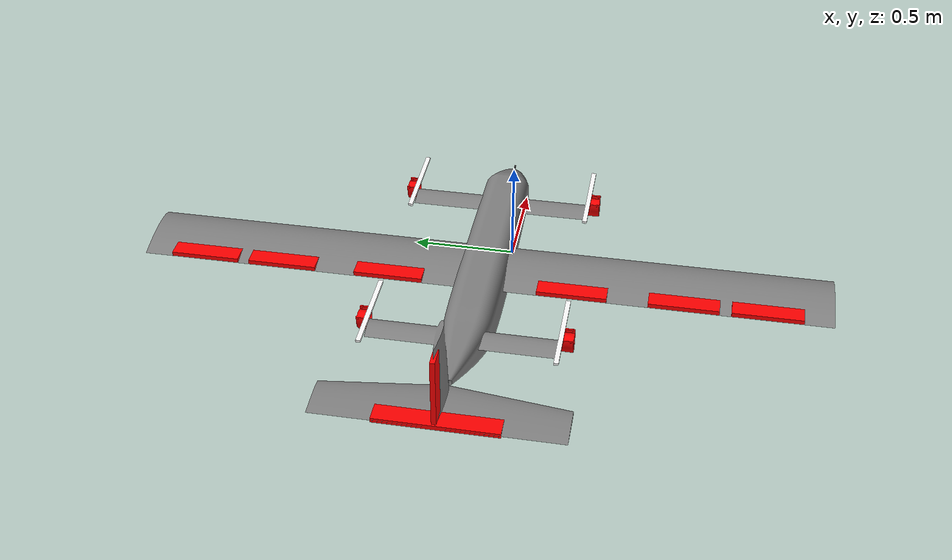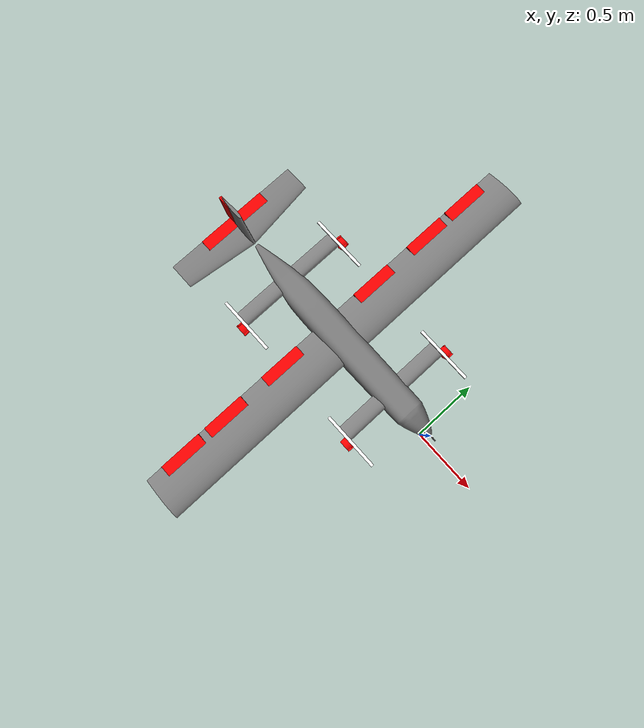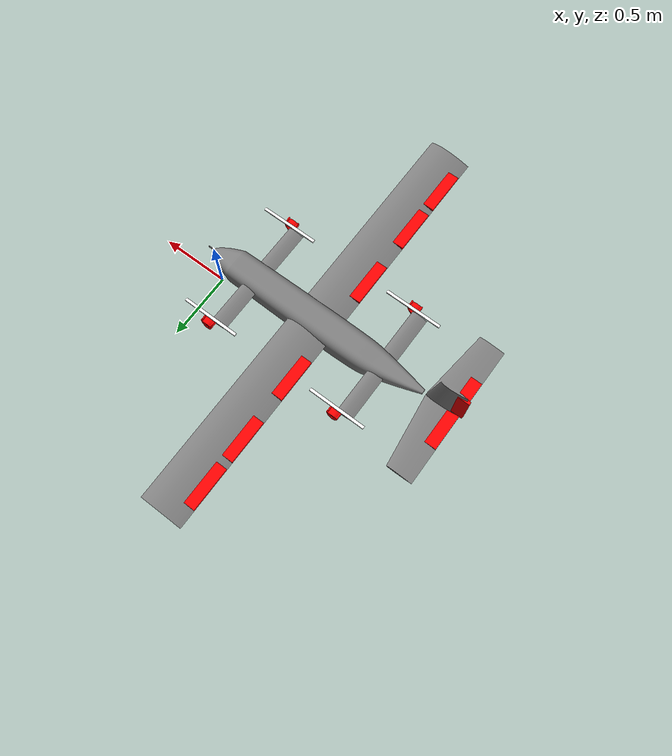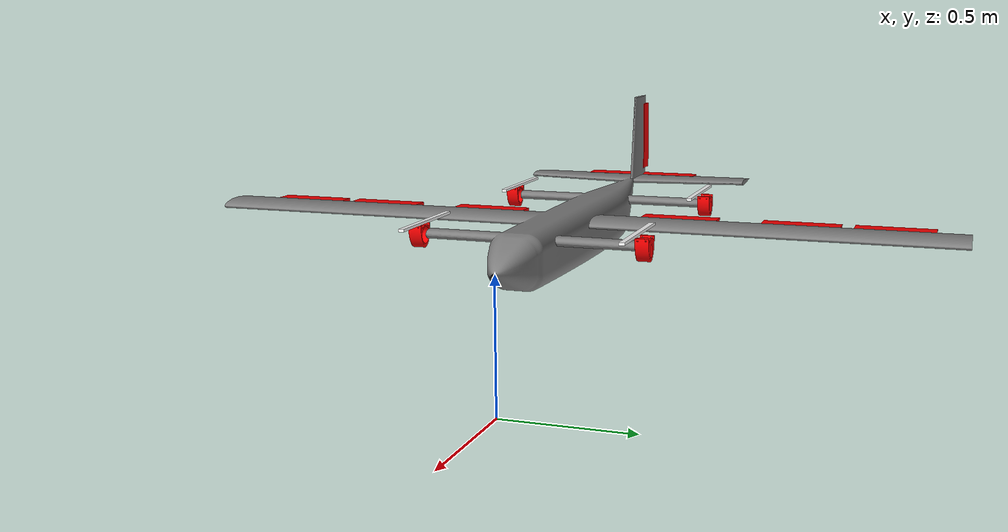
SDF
<?xml version='1.0' encoding='utf-8'?>
<sdf version="1.9">
  <model name="maal_tiltrotor">
    <pose>0 0 0.5 0 0 0</pose><link name="base_link">
      <pose>0 0 0 0 0 0</pose>
      <inertial>
        <pose>-0.711142 0.007716 0.189592 0 0 0</pose>
        <mass>11.177</mass>
        <inertia>
          <ixx>2.501116</ixx>
          <ixy>0.192588</ixy>
          <ixz>-0.028598</ixz>
          <iyy>4.319399</iyy>
          <iyz>-0.002085</iyz>
          <izz>1.94082</izz>
        </inertia>
      </inertial>
      <visual name="base_link_visual">
        <pose>0 0 0 0 0 3.14159265</pose>
        <geometry>
          <mesh><scale>0.001 0.001 0.001</scale><uri>model://maal_tiltrotor/meshes/fix_body.stl</uri></mesh></geometry>
        <material>
          <ambient>0.5 0.5 0.5 1</ambient>
          <diffuse>0.5 0.5 0.5 1</diffuse>
        </material>
      </visual>
      <collision name="base_link_collision">
        <pose>-0.711142 0.007716 0.089592 0 0 0</pose>
        <geometry>
          <box>
            <size>2.0 0.5 0.3</size>
          </box>
        </geometry>
      </collision>
    <sensor name="imu_sensor" type="imu">
        <pose>-0.711142 0.007716 0.189592 0 0 0</pose>
        <always_on>1</always_on>
        <update_rate>250</update_rate>
        <imu>
          <angular_velocity>
            <x>
              <noise type="gaussian">
                <mean>0</mean>
                <stddev>0.0003394</stddev>
                <dynamic_bias_stddev>3.8785e-05</dynamic_bias_stddev>
                <dynamic_bias_correlation_time>1000</dynamic_bias_correlation_time>
              </noise>
            </x>
            <y>
              <noise type="gaussian">
                <mean>0</mean>
                <stddev>0.0003394</stddev>
                <dynamic_bias_stddev>3.8785e-05</dynamic_bias_stddev>
                <dynamic_bias_correlation_time>1000</dynamic_bias_correlation_time>
              </noise>
            </y>
            <z>
              <noise type="gaussian">
                <mean>0</mean>
                <stddev>0.0003394</stddev>
                <dynamic_bias_stddev>3.8785e-05</dynamic_bias_stddev>
                <dynamic_bias_correlation_time>1000</dynamic_bias_correlation_time>
              </noise>
            </z>
          </angular_velocity>
          <linear_acceleration>
            <x>
              <noise type="gaussian">
                <mean>0</mean>
                <stddev>0.004</stddev>
                <dynamic_bias_stddev>0.006</dynamic_bias_stddev>
                <dynamic_bias_correlation_time>300</dynamic_bias_correlation_time>
              </noise>
            </x>
            <y>
              <noise type="gaussian">
                <mean>0</mean>
                <stddev>0.004</stddev>
                <dynamic_bias_stddev>0.006</dynamic_bias_stddev>
                <dynamic_bias_correlation_time>300</dynamic_bias_correlation_time>
              </noise>
            </y>
            <z>
              <noise type="gaussian">
                <mean>0</mean>
                <stddev>0.004</stddev>
                <dynamic_bias_stddev>0.006</dynamic_bias_stddev>
                <dynamic_bias_correlation_time>300</dynamic_bias_correlation_time>
              </noise>
            </z>
          </linear_acceleration>
        </imu>
      </sensor>
      <sensor name="air_pressure_sensor" type="air_pressure">
        <pose>-0.711142 0.007716 0.189592 0 0 0</pose>
        <always_on>1</always_on>
        <update_rate>50</update_rate>
        <air_pressure>
          <pressure>
            <noise type="gaussian">
              <mean>0</mean>
              <stddev>0.01</stddev>
            </noise>
          </pressure>
        </air_pressure>
      </sensor>
      <sensor name="magnetometer_sensor" type="magnetometer">
        <pose>-0.711142 0.007716 0.189592 0 0 0</pose>
        <always_on>1</always_on>
        <update_rate>100</update_rate>
        <magnetometer>
          <x>
            <noise type="gaussian">
              <stddev>0.0001</stddev>
            </noise>
          </x>
          <y>
            <noise type="gaussian">
              <stddev>0.0001</stddev>
            </noise>
          </y>
          <z>
            <noise type="gaussian">
              <stddev>0.0001</stddev>
            </noise>
          </z>
        </magnetometer>
      </sensor>
      <sensor name="navsat_sensor" type="navsat">
        <pose>-0.711142 0.007716 0.189592 0 0 0</pose>
        <always_on>1</always_on>
        <update_rate>30</update_rate>
      </sensor>
    </link>
    <link name="tilt_front_right">
      <pose>-0.325 -0.4 0.053 0 0 0</pose>
      <inertial>
        <mass>0.01</mass>
        <inertia>
          <ixx>0.0001</ixx>
          <ixy>0</ixy>
          <ixz>0</ixz>
          <iyy>0.0001</iyy>
          <iyz>0</iyz>
          <izz>0.0001</izz>
        </inertia>
      </inertial>
      <visual name="tilt_front_right_visual">
        <pose>0 0 0 0 0 3.14159265</pose><geometry>
          <mesh><scale>0.001 0.001 0.001</scale><uri>model://maal_tiltrotor/meshes/tilter.stl</uri></mesh></geometry>
        <material>
          <ambient>1 0 0 1</ambient>
        </material>
      </visual>
    </link>
    <joint name="tilt_front_right_joint" type="revolute">
      <parent>base_link</parent>
      <child>tilt_front_right</child>
      <pose>0 0 0 0 0 0</pose>
      <axis>
        <xyz>0 1.0 0</xyz>
        <limit>
          <lower>-0.2</lower>
          <upper>1.7</upper>
        </limit>
        <dynamics>
          <damping>0.01</damping>
          <friction>0.01</friction>
        </dynamics>
      </axis>
    </joint>
    <link name="tilt_front_left">
      <pose>-0.325 0.4 0.053 0 0 0</pose>
      <inertial>
        <mass>0.01</mass>
        <inertia>
          <ixx>0.0001</ixx>
          <ixy>0</ixy>
          <ixz>0</ixz>
          <iyy>0.0001</iyy>
          <iyz>0</iyz>
          <izz>0.0001</izz>
        </inertia>
      </inertial>
      <visual name="tilt_front_left_visual">
        <pose>0 0 0 0 0 3.14159265</pose><geometry>
          <mesh><scale>0.001 -0.001 0.001</scale><uri>model://maal_tiltrotor/meshes/tilter.stl</uri></mesh></geometry>
        <material>
          <ambient>1 0 0 1</ambient>
        </material>
      </visual>
    </link>
    <joint name="tilt_front_left_joint" type="revolute">
      <parent>base_link</parent>
      <child>tilt_front_left</child>
      <pose>0 0 0 0 0 0</pose>
      <axis>
        <xyz>0 1.0 0</xyz>
        <limit>
          <lower>-0.2</lower>
          <upper>1.7</upper>
        </limit>
        <dynamics>
          <damping>0.01</damping>
          <friction>0.01</friction>
        </dynamics>
      </axis>
    </joint>
    <link name="tilt_rear_right">
      <pose>-1.305 -0.4 0.053 0 0 0</pose>
      <inertial>
        <mass>0.01</mass>
        <inertia>
          <ixx>0.0001</ixx>
          <ixy>0</ixy>
          <ixz>0</ixz>
          <iyy>0.0001</iyy>
          <iyz>0</iyz>
          <izz>0.0001</izz>
        </inertia>
      </inertial>
      <visual name="tilt_rear_right_visual">
        <pose>0 0 0 0 0 3.14159265</pose><geometry>
          <mesh><scale>0.001 0.001 0.001</scale><uri>model://maal_tiltrotor/meshes/tilter.stl</uri></mesh></geometry>
        <material>
          <ambient>1 0 0 1</ambient>
        </material>
      </visual>
    </link>
    <joint name="tilt_rear_right_joint" type="revolute">
      <parent>base_link</parent>
      <child>tilt_rear_right</child>
      <pose>0 0 0 0 0 0</pose>
      <axis>
        <xyz>0 1.0 0</xyz>
        <limit>
          <lower>-0.2</lower>
          <upper>1.7</upper>
        </limit>
        <dynamics>
          <damping>0.01</damping>
          <friction>0.01</friction>
        </dynamics>
      </axis>
    </joint>
    <link name="tilt_rear_left">
      <pose>-1.305 0.4 0.053 0 0 0</pose>
      <inertial>
        <mass>0.01</mass>
        <inertia>
          <ixx>0.0001</ixx>
          <ixy>0</ixy>
          <ixz>0</ixz>
          <iyy>0.0001</iyy>
          <iyz>0</iyz>
          <izz>0.0001</izz>
        </inertia>
      </inertial>
      <visual name="tilt_rear_left_visual">
        <pose>0 0 0 0 0 3.14159265</pose><geometry>
          <mesh><scale>0.001 -0.001 0.001</scale><uri>model://maal_tiltrotor/meshes/tilter.stl</uri></mesh></geometry>
        <material>
          <ambient>1 0 0 1</ambient>
        </material>
      </visual>
    </link>
    <joint name="tilt_rear_left_joint" type="revolute">
      <parent>base_link</parent>
      <child>tilt_rear_left</child>
      <pose>0 0 0 0 0 0</pose>
      <axis>
        <xyz>0 1.0 0</xyz>
        <limit>
          <lower>-0.2</lower>
          <upper>1.7</upper>
        </limit>
        <dynamics>
          <damping>0.01</damping>
          <friction>0.01</friction>
        </dynamics>
      </axis>
    </joint>
    <link name="rotor_0">
      <pose>-0.325 0.4 0.103 0 0 0</pose>
      <inertial>
        <mass>0.05</mass>
        <inertia>
          <ixx>0.000653</ixx>
          <ixy>0</ixy>
          <ixz>0</ixz>
          <iyy>0.000653</iyy>
          <iyz>0</iyz>
          <izz>0.001306</izz>
        </inertia>
      </inertial>
      <visual name="rotor_0_visual">
        <geometry>
          <box><size>0.4 0.02 0.01</size></box></geometry>
        <material>
          <ambient>1 1 1 1</ambient>
        </material>
      </visual>
    </link>
    <joint name="rotor_0_joint" type="revolute">
      <parent>tilt_front_left</parent>
      <child>rotor_0</child>
      <pose>0 0 0 0 0 0</pose>
      <axis>
        <xyz>0 0 1</xyz>
        <limit>
          <lower>-1e16</lower>
          <upper>1e16</upper>
        </limit>
      </axis>
    </joint>
    <link name="rotor_1">
      <pose>-0.325 -0.4 0.103 0 0 0</pose>
      <inertial>
        <mass>0.05</mass>
        <inertia>
          <ixx>0.000653</ixx>
          <ixy>0</ixy>
          <ixz>0</ixz>
          <iyy>0.000653</iyy>
          <iyz>0</iyz>
          <izz>0.001306</izz>
        </inertia>
      </inertial>
      <visual name="rotor_1_visual">
        <geometry>
          <box><size>0.4 0.02 0.01</size></box></geometry>
        <material>
          <ambient>1 1 1 1</ambient>
        </material>
      </visual>
    </link>
    <joint name="rotor_1_joint" type="revolute">
      <parent>tilt_front_right</parent>
      <child>rotor_1</child>
      <pose>0 0 0 0 0 0</pose>
      <axis>
        <xyz>0 0 1</xyz>
        <limit>
          <lower>-1e16</lower>
          <upper>1e16</upper>
        </limit>
      </axis>
    </joint>
    <link name="rotor_2">
      <pose>-1.305 0.4 0.103 0 0 0</pose>
      <inertial>
        <mass>0.05</mass>
        <inertia>
          <ixx>0.000653</ixx>
          <ixy>0</ixy>
          <ixz>0</ixz>
          <iyy>0.000653</iyy>
          <iyz>0</iyz>
          <izz>0.001306</izz>
        </inertia>
      </inertial>
      <visual name="rotor_2_visual">
        <geometry>
          <box><size>0.4 0.02 0.01</size></box></geometry>
        <material>
          <ambient>1 1 1 1</ambient>
        </material>
      </visual>
    </link>
    <joint name="rotor_2_joint" type="revolute">
      <parent>tilt_rear_left</parent>
      <child>rotor_2</child>
      <pose>0 0 0 0 0 0</pose>
      <axis>
        <xyz>0 0 1</xyz>
        <limit>
          <lower>-1e16</lower>
          <upper>1e16</upper>
        </limit>
      </axis>
    </joint>
    <link name="rotor_3">
      <pose>-1.305 -0.4 0.103 0 0 0</pose>
      <inertial>
        <mass>0.05</mass>
        <inertia>
          <ixx>0.000653</ixx>
          <ixy>0</ixy>
          <ixz>0</ixz>
          <iyy>0.000653</iyy>
          <iyz>0</iyz>
          <izz>0.001306</izz>
        </inertia>
      </inertial>
      <visual name="rotor_3_visual">
        <geometry>
          <box><size>0.4 0.02 0.01</size></box></geometry>
        <material>
          <ambient>1 1 1 1</ambient>
        </material>
      </visual>
    </link>
    <joint name="rotor_3_joint" type="revolute">
      <parent>tilt_rear_right</parent>
      <child>rotor_3</child>
      <pose>0 0 0 0 0 0</pose>
      <axis>
        <xyz>0 0 1</xyz>
        <limit>
          <lower>-1e16</lower>
          <upper>1e16</upper>
        </limit>
      </axis>
    </joint>
    <link name="flap_left">
      <pose>-0.9 0.4 0.044 0 0 0</pose>
      <inertial>
        <mass>0.01</mass>
        <inertia>
          <ixx>0.0001</ixx>
          <ixy>0</ixy>
          <ixz>0</ixz>
          <iyy>0.0001</iyy>
          <iyz>0</iyz>
          <izz>0.0001</izz>
        </inertia>
      </inertial>
      <visual name="flap_left_visual">
        <pose>-0.05 0 0 0 0 0</pose>
        <geometry>
          <box>
            <size>0.1 0.3 0.02</size>
          </box>
        </geometry>
        <material>
          <ambient>1 0 0 1</ambient>
        </material>
      </visual>
    </link>
    <joint name="flap_left_joint" type="revolute">
      <parent>base_link</parent>
      <child>flap_left</child>
      <pose>0 0 0 0 0 0</pose>
      <axis>
        <xyz>0 -1.0 0</xyz>
        <limit>
          <lower>-1.0</lower>
          <upper>1.0</upper>
        </limit>
        <dynamics>
          <damping>0.01</damping>
          <friction>0.01</friction>
        </dynamics>
      </axis>
    </joint>
    <link name="flap_right">
      <pose>-0.9 -0.4 0.044 0 0 0</pose>
      <inertial>
        <mass>0.01</mass>
        <inertia>
          <ixx>0.0001</ixx>
          <ixy>0</ixy>
          <ixz>0</ixz>
          <iyy>0.0001</iyy>
          <iyz>0</iyz>
          <izz>0.0001</izz>
        </inertia>
      </inertial>
      <visual name="flap_right_visual">
        <pose>-0.05 0 0 0 0 0</pose>
        <geometry>
          <box>
            <size>0.1 0.3 0.02</size>
          </box>
        </geometry>
        <material>
          <ambient>1 0 0 1</ambient>
        </material>
      </visual>
    </link>
    <joint name="flap_right_joint" type="revolute">
      <parent>base_link</parent>
      <child>flap_right</child>
      <pose>0 0 0 0 0 0</pose>
      <axis>
        <xyz>0 -1.0 0</xyz>
        <limit>
          <lower>-1.0</lower>
          <upper>1.0</upper>
        </limit>
        <dynamics>
          <damping>0.01</damping>
          <friction>0.01</friction>
        </dynamics>
      </axis>
    </joint>
    <link name="aileron_inner_left">
      <pose>-0.9 0.875 0.044 0 0 0</pose>
      <inertial>
        <mass>0.01</mass>
        <inertia>
          <ixx>0.0001</ixx>
          <ixy>0</ixy>
          <ixz>0</ixz>
          <iyy>0.0001</iyy>
          <iyz>0</iyz>
          <izz>0.0001</izz>
        </inertia>
      </inertial>
      <visual name="aileron_inner_left_visual">
        <pose>-0.05 0 0 0 0 0</pose>
        <geometry>
          <box>
            <size>0.1 0.3 0.02</size>
          </box>
        </geometry>
        <material>
          <ambient>1 0 0 1</ambient>
        </material>
      </visual>
    </link>
    <joint name="aileron_inner_left_joint" type="revolute">
      <parent>base_link</parent>
      <child>aileron_inner_left</child>
      <pose>0 0 0 0 0 0</pose>
      <axis>
        <xyz>0 -1.0 0</xyz>
        <limit>
          <lower>-1.0</lower>
          <upper>1.0</upper>
        </limit>
        <dynamics>
          <damping>0.01</damping>
          <friction>0.01</friction>
        </dynamics>
      </axis>
    </joint>
    <link name="aileron_inner_right">
      <pose>-0.9 -0.875 0.044 0 0 0</pose>
      <inertial>
        <mass>0.01</mass>
        <inertia>
          <ixx>0.0001</ixx>
          <ixy>0</ixy>
          <ixz>0</ixz>
          <iyy>0.0001</iyy>
          <iyz>0</iyz>
          <izz>0.0001</izz>
        </inertia>
      </inertial>
      <visual name="aileron_inner_right_visual">
        <pose>-0.05 0 0 0 0 0</pose>
        <geometry>
          <box>
            <size>0.1 0.3 0.02</size>
          </box>
        </geometry>
        <material>
          <ambient>1 0 0 1</ambient>
        </material>
      </visual>
    </link>
    <joint name="aileron_inner_right_joint" type="revolute">
      <parent>base_link</parent>
      <child>aileron_inner_right</child>
      <pose>0 0 0 0 0 0</pose>
      <axis>
        <xyz>0 1.0 0</xyz>
        <limit>
          <lower>-1.0</lower>
          <upper>1.0</upper>
        </limit>
        <dynamics>
          <damping>0.01</damping>
          <friction>0.01</friction>
        </dynamics>
      </axis>
    </joint>
    <link name="aileron_outer_left">
      <pose>-0.9 1.225 0.044 0 0 0</pose>
      <inertial>
        <mass>0.01</mass>
        <inertia>
          <ixx>0.0001</ixx>
          <ixy>0</ixy>
          <ixz>0</ixz>
          <iyy>0.0001</iyy>
          <iyz>0</iyz>
          <izz>0.0001</izz>
        </inertia>
      </inertial>
      <visual name="aileron_outer_left_visual">
        <pose>-0.05 0 0 0 0 0</pose>
        <geometry>
          <box>
            <size>0.1 0.3 0.02</size>
          </box>
        </geometry>
        <material>
          <ambient>1 0 0 1</ambient>
        </material>
      </visual>
    </link>
    <joint name="aileron_outer_left_joint" type="revolute">
      <parent>base_link</parent>
      <child>aileron_outer_left</child>
      <pose>0 0 0 0 0 0</pose>
      <axis>
        <xyz>0 -1.0 0</xyz>
        <limit>
          <lower>-1.0</lower>
          <upper>1.0</upper>
        </limit>
        <dynamics>
          <damping>0.01</damping>
          <friction>0.01</friction>
        </dynamics>
      </axis>
    </joint>
    <link name="aileron_outer_right">
      <pose>-0.9 -1.225 0.044 0 0 0</pose>
      <inertial>
        <mass>0.01</mass>
        <inertia>
          <ixx>0.0001</ixx>
          <ixy>0</ixy>
          <ixz>0</ixz>
          <iyy>0.0001</iyy>
          <iyz>0</iyz>
          <izz>0.0001</izz>
        </inertia>
      </inertial>
      <visual name="aileron_outer_right_visual">
        <pose>-0.05 0 0 0 0 0</pose>
        <geometry>
          <box>
            <size>0.1 0.3 0.02</size>
          </box>
        </geometry>
        <material>
          <ambient>1 0 0 1</ambient>
        </material>
      </visual>
    </link>
    <joint name="aileron_outer_right_joint" type="revolute">
      <parent>base_link</parent>
      <child>aileron_outer_right</child>
      <pose>0 0 0 0 0 0</pose>
      <axis>
        <xyz>0 1.0 0</xyz>
        <limit>
          <lower>-1.0</lower>
          <upper>1.0</upper>
        </limit>
        <dynamics>
          <damping>0.01</damping>
          <friction>0.01</friction>
        </dynamics>
      </axis>
    </joint>
    <link name="elevator">
      <pose>-1.84 -0.0 0.084 0 0 0</pose>
      <inertial>
        <mass>0.01</mass>
        <inertia>
          <ixx>0.0001</ixx>
          <ixy>0</ixy>
          <ixz>0</ixz>
          <iyy>0.0001</iyy>
          <iyz>0</iyz>
          <izz>0.0001</izz>
        </inertia>
      </inertial>
      <visual name="elevator_visual">
        <pose>-0.04 0 0 0 0 0</pose>
        <geometry>
          <box>
            <size>0.08 0.5 0.02</size>
          </box>
        </geometry>
        <material>
          <ambient>1 0 0 1</ambient>
        </material>
      </visual>
    </link>
    <joint name="elevator_joint" type="revolute">
      <parent>base_link</parent>
      <child>elevator</child>
      <pose>0 0 0 0 0 0</pose>
      <axis>
        <xyz>0 1.0 0</xyz>
        <limit>
          <lower>-1.0</lower>
          <upper>1.0</upper>
        </limit>
        <dynamics>
          <damping>0.01</damping>
          <friction>0.01</friction>
        </dynamics>
      </axis>
    </joint>
    <link name="rudder">
      <pose>-1.86 -0.0 0.2715 0 0 0</pose>
      <inertial>
        <mass>0.01</mass>
        <inertia>
          <ixx>0.0001</ixx>
          <ixy>0</ixy>
          <ixz>0</ixz>
          <iyy>0.0001</iyy>
          <iyz>0</iyz>
          <izz>0.0001</izz>
        </inertia>
      </inertial>
      <visual name="rudder_visual">
        <pose>-0.04 0 0 0 0 0</pose>
        <geometry>
          <box>
            <size>0.08 0.02 0.3</size>
          </box>
        </geometry>
        <material>
          <ambient>1 0 0 1</ambient>
        </material>
      </visual>
    </link>
    <joint name="rudder_joint" type="revolute">
      <parent>base_link</parent>
      <child>rudder</child>
      <pose>0 0 0 0 0 0</pose>
      <axis>
        <xyz>0 0 1</xyz>
        <limit>
          <lower>-1.0</lower>
          <upper>1.0</upper>
        </limit>
        <dynamics>
          <damping>0.01</damping>
          <friction>0.01</friction>
        </dynamics>
      </axis>
    </joint>
    <plugin filename="gz-sim-lift-drag-system" name="gz::sim::systems::LiftDrag">
      <a0>-0.07576366480965314</a0>
      <cla>6.641388195186651</cla>
      <cda>0.04247026528206389</cda>
      <cma>0.0</cma>
      <alpha_stall>0.26</alpha_stall>
      <cla_stall>-2.5</cla_stall>
      <cda_stall>-0.5</cda_stall>
      <cma_stall>0.0</cma_stall>
      <cp>-0.711142 -0.0 0.189592</cp>
      <area>0.9</area>
      <air_density>1.2041</air_density>
      <forward>1 0 0</forward>
      <upward>0 0 1</upward>
      <link_name>base_link</link_name>
    </plugin>
    <plugin filename="gz-sim-multicopter-motor-model-system" name="gz::sim::systems::MulticopterMotorModel">
      <jointName>rotor_0_joint</jointName>
      <linkName>rotor_0</linkName>
      <turningDirection>cw</turningDirection>
      <timeConstantUp>0.06</timeConstantUp>
      <timeConstantDown>0.08</timeConstantDown>
      <maxRotVelocity>1100</maxRotVelocity>
      <motorConstant>7.5e-05</motorConstant>
      <momentConstant>0.02</momentConstant>
      <commandSubTopic>command/motor_speed</commandSubTopic>
      <motorNumber>0</motorNumber>
      <rotorDragCoefficient>8.06428e-05</rotorDragCoefficient>
      <rollingMomentCoefficient>1e-06</rollingMomentCoefficient>
      <rotorVelocitySlowdownSim>10</rotorVelocitySlowdownSim>
      <motorType>velocity</motorType>
    </plugin>
    <plugin filename="gz-sim-multicopter-motor-model-system" name="gz::sim::systems::MulticopterMotorModel">
      <jointName>rotor_1_joint</jointName>
      <linkName>rotor_1</linkName>
      <turningDirection>ccw</turningDirection>
      <timeConstantUp>0.06</timeConstantUp>
      <timeConstantDown>0.08</timeConstantDown>
      <maxRotVelocity>1100</maxRotVelocity>
      <motorConstant>7.5e-05</motorConstant>
      <momentConstant>0.02</momentConstant>
      <commandSubTopic>command/motor_speed</commandSubTopic>
      <motorNumber>1</motorNumber>
      <rotorDragCoefficient>8.06428e-05</rotorDragCoefficient>
      <rollingMomentCoefficient>1e-06</rollingMomentCoefficient>
      <rotorVelocitySlowdownSim>10</rotorVelocitySlowdownSim>
      <motorType>velocity</motorType>
    </plugin>
    <plugin filename="gz-sim-multicopter-motor-model-system" name="gz::sim::systems::MulticopterMotorModel">
      <jointName>rotor_2_joint</jointName>
      <linkName>rotor_2</linkName>
      <turningDirection>ccw</turningDirection>
      <timeConstantUp>0.06</timeConstantUp>
      <timeConstantDown>0.08</timeConstantDown>
      <maxRotVelocity>1100</maxRotVelocity>
      <motorConstant>7.5e-05</motorConstant>
      <momentConstant>0.02</momentConstant>
      <commandSubTopic>command/motor_speed</commandSubTopic>
      <motorNumber>2</motorNumber>
      <rotorDragCoefficient>8.06428e-05</rotorDragCoefficient>
      <rollingMomentCoefficient>1e-06</rollingMomentCoefficient>
      <rotorVelocitySlowdownSim>10</rotorVelocitySlowdownSim>
      <motorType>velocity</motorType>
    </plugin>
    <plugin filename="gz-sim-multicopter-motor-model-system" name="gz::sim::systems::MulticopterMotorModel">
      <jointName>rotor_3_joint</jointName>
      <linkName>rotor_3</linkName>
      <turningDirection>cw</turningDirection>
      <timeConstantUp>0.06</timeConstantUp>
      <timeConstantDown>0.08</timeConstantDown>
      <maxRotVelocity>1100</maxRotVelocity>
      <motorConstant>7.5e-05</motorConstant>
      <momentConstant>0.02</momentConstant>
      <commandSubTopic>command/motor_speed</commandSubTopic>
      <motorNumber>3</motorNumber>
      <rotorDragCoefficient>8.06428e-05</rotorDragCoefficient>
      <rollingMomentCoefficient>1e-06</rollingMomentCoefficient>
      <rotorVelocitySlowdownSim>10</rotorVelocitySlowdownSim>
      <motorType>velocity</motorType>
    </plugin>
    <plugin filename="gz-sim-joint-position-controller-system" name="gz::sim::systems::JointPositionController">
      <joint_name>tilt_front_right_joint</joint_name>
      <sub_topic>servo_7</sub_topic>
      <p_gain>2.0</p_gain>
      <i_gain>0</i_gain>
      <d_gain>0.05</d_gain>
    <cmd_max>1.0</cmd_max></plugin>
    <plugin filename="gz-sim-joint-position-controller-system" name="gz::sim::systems::JointPositionController">
      <joint_name>tilt_front_left_joint</joint_name>
      <sub_topic>servo_7</sub_topic>
      <p_gain>2.0</p_gain>
      <i_gain>0</i_gain>
      <d_gain>0.05</d_gain>
    <cmd_max>1.0</cmd_max></plugin>
    <plugin filename="gz-sim-joint-position-controller-system" name="gz::sim::systems::JointPositionController">
      <joint_name>tilt_rear_right_joint</joint_name>
      <sub_topic>servo_7</sub_topic>
      <p_gain>2.0</p_gain>
      <i_gain>0</i_gain>
      <d_gain>0.05</d_gain>
    <cmd_max>1.0</cmd_max></plugin>
    <plugin filename="gz-sim-joint-position-controller-system" name="gz::sim::systems::JointPositionController">
      <joint_name>tilt_rear_left_joint</joint_name>
      <sub_topic>servo_7</sub_topic>
      <p_gain>2.0</p_gain>
      <i_gain>0</i_gain>
      <d_gain>0.05</d_gain>
    <cmd_max>1.0</cmd_max></plugin>
    <plugin filename="gz-sim-joint-position-controller-system" name="gz::sim::systems::JointPositionController">
      <joint_name>flap_left_joint</joint_name>
      <sub_topic>servo_4</sub_topic>
      <p_gain>0.5</p_gain>
      <i_gain>0</i_gain>
      <d_gain>0.05</d_gain>
    <cmd_max>1.0</cmd_max></plugin>
    <plugin filename="gz-sim-joint-position-controller-system" name="gz::sim::systems::JointPositionController">
      <joint_name>flap_right_joint</joint_name>
      <sub_topic>servo_4</sub_topic>
      <p_gain>0.5</p_gain>
      <i_gain>0</i_gain>
      <d_gain>0.05</d_gain>
    <cmd_max>1.0</cmd_max></plugin>
    <plugin filename="gz-sim-joint-position-controller-system" name="gz::sim::systems::JointPositionController">
      <joint_name>aileron_inner_left_joint</joint_name>
      <sub_topic>servo_2</sub_topic>
      <p_gain>0.5</p_gain>
      <i_gain>0</i_gain>
      <d_gain>0.05</d_gain>
    <cmd_max>1.0</cmd_max></plugin>
    <plugin filename="gz-sim-joint-position-controller-system" name="gz::sim::systems::JointPositionController">
      <joint_name>aileron_inner_right_joint</joint_name>
      <sub_topic>servo_3</sub_topic>
      <p_gain>0.5</p_gain>
      <i_gain>0</i_gain>
      <d_gain>0.05</d_gain>
    <cmd_max>1.0</cmd_max></plugin>
    <plugin filename="gz-sim-joint-position-controller-system" name="gz::sim::systems::JointPositionController">
      <joint_name>aileron_outer_left_joint</joint_name>
      <sub_topic>servo_0</sub_topic>
      <p_gain>0.5</p_gain>
      <i_gain>0</i_gain>
      <d_gain>0.05</d_gain>
    <cmd_max>1.0</cmd_max></plugin>
    <plugin filename="gz-sim-joint-position-controller-system" name="gz::sim::systems::JointPositionController">
      <joint_name>aileron_outer_right_joint</joint_name>
      <sub_topic>servo_1</sub_topic>
      <p_gain>0.5</p_gain>
      <i_gain>0</i_gain>
      <d_gain>0.05</d_gain>
    <cmd_max>1.0</cmd_max></plugin>
    <plugin filename="gz-sim-joint-position-controller-system" name="gz::sim::systems::JointPositionController">
      <joint_name>elevator_joint</joint_name>
      <sub_topic>servo_5</sub_topic>
      <p_gain>0.5</p_gain>
      <i_gain>0</i_gain>
      <d_gain>0.05</d_gain>
    <cmd_max>1.0</cmd_max></plugin>
    <plugin filename="gz-sim-joint-position-controller-system" name="gz::sim::systems::JointPositionController">
      <joint_name>rudder_joint</joint_name>
      <sub_topic>servo_6</sub_topic>
      <p_gain>0.5</p_gain>
      <i_gain>0</i_gain>
      <d_gain>0.05</d_gain>
    <cmd_max>1.0</cmd_max></plugin>
  <include merge="true">
      <uri>model://airspeed</uri>
      <pose>0. 0. 0. 0. 0. 0.</pose>
    </include>
    <joint name="airspeed_joint" type="fixed">
      <parent>base_link</parent>
      <child>airspeed_link</child>
      <pose relative_to="base_link">-0 0 0 0 0 0</pose>
    </joint>

    </model>
</sdf>

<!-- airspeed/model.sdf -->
<sdf version="1.6">
  <model name="airspeed">
    <link name="airspeed_link">
      <pose>0 0 0 0 0 0</pose>
      <inertial>
        <pose>0 0 0 0 0 0</pose>
        <mass>0.015</mass>
        <inertia>
          <ixx>1e-05</ixx>
          <ixy>0</ixy>
          <ixz>0</ixz>
          <iyy>1e-05</iyy>
          <iyz>0</iyz>
          <izz>1e-05</izz>
        </inertia>
      </inertial>
      <visual name="visual">
        <pose>0 0 0 0 1.57 0</pose>
        <geometry>
          <cylinder>
            <radius>0.004</radius>
            <length>0.08</length>
          </cylinder>
        </geometry> <!-- Black -->
        <material>
          <diffuse>0.0 0.0 0.0</diffuse>
          <specular>0.5 0.5 0.5</specular>
        </material>
      </visual>
      <sensor name="air_speed" type="air_speed">
        <pose>0 0 0 0 0 0</pose>
        <update_rate>5.0</update_rate>
        <always_on>1</always_on>
        <visualize>false</visualize>
      </sensor>
    </link>
  </model>
</sdf>
